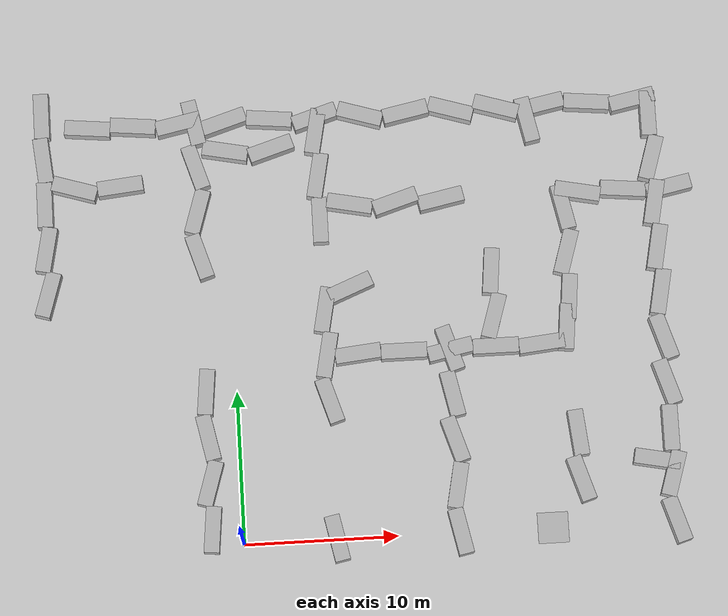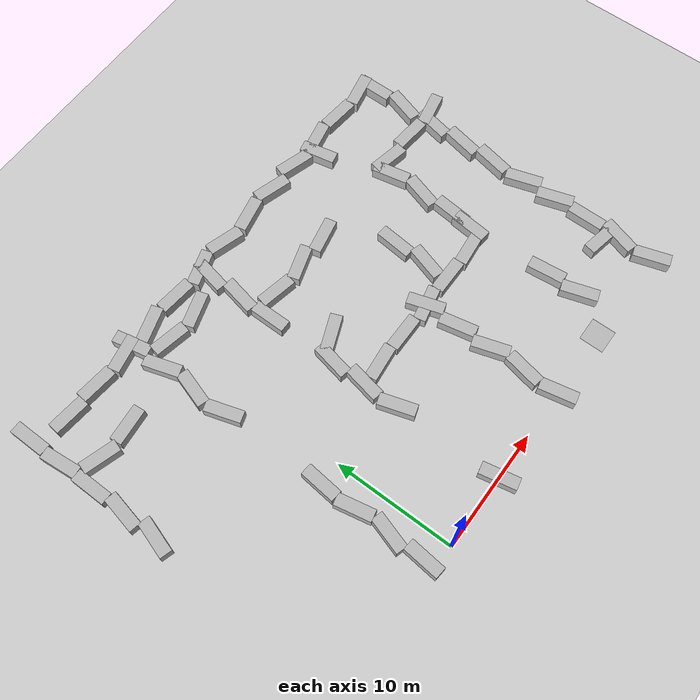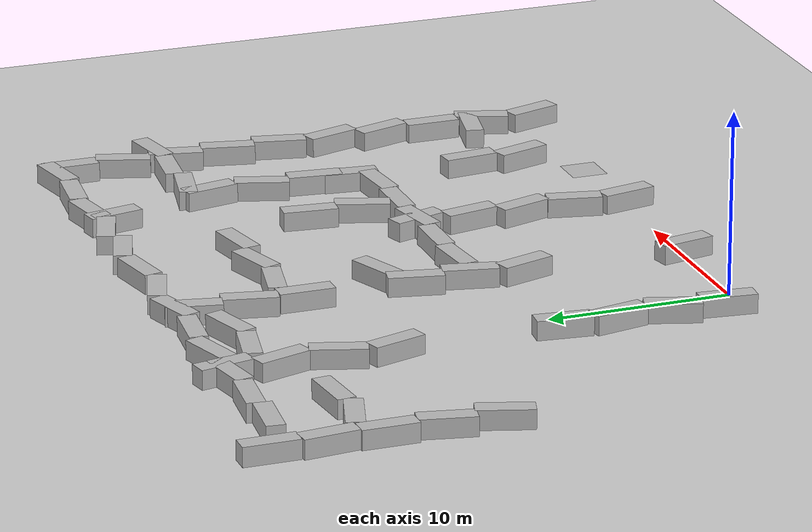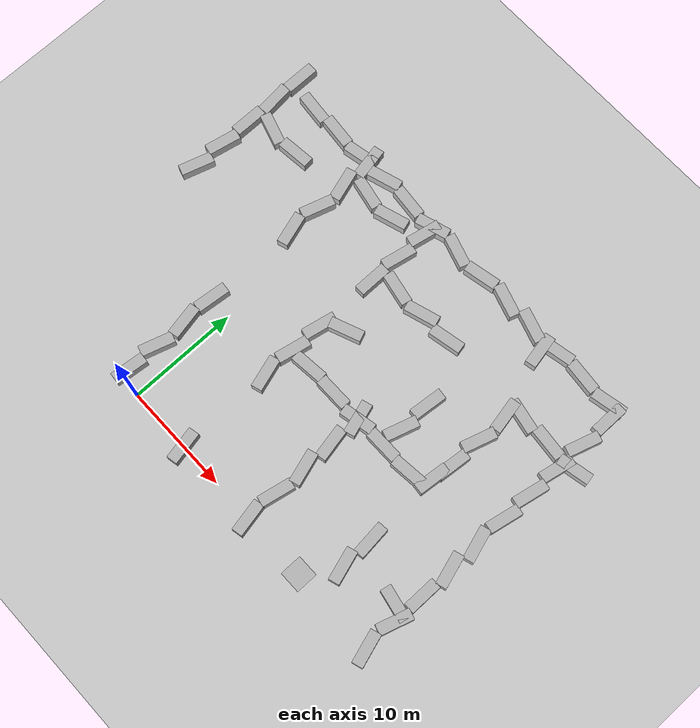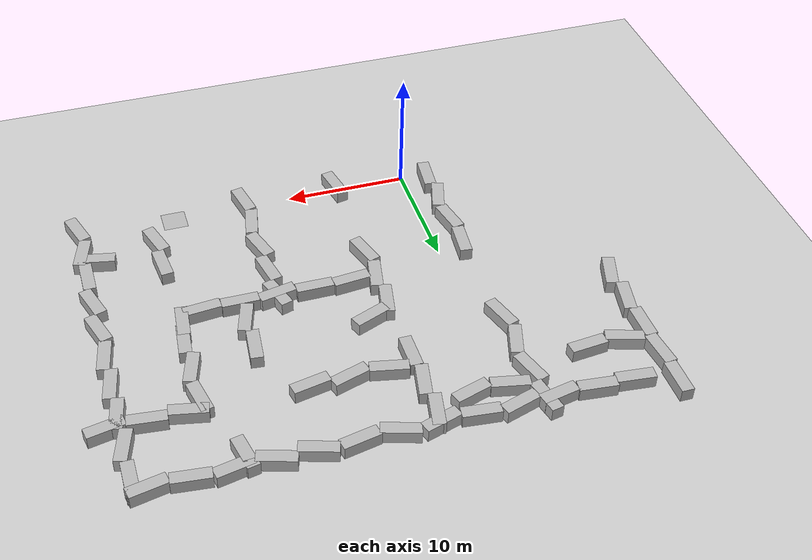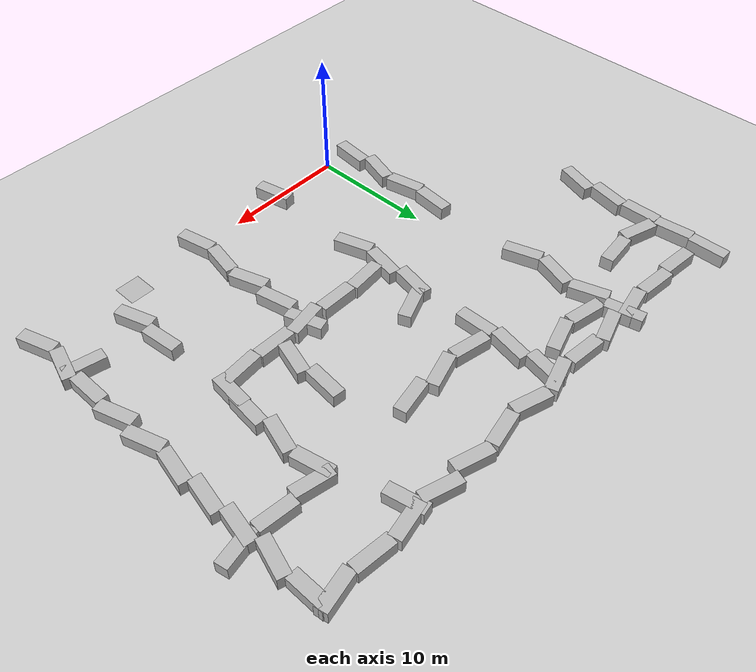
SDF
<sdf version="1.6">
 <world name="default">
  <model name="ground_plane">
   <static>1</static>
   <link name="link">
    <collision name="collision">
     <geometry><plane><normal>0 0 1</normal><size>100 100</size></plane></geometry>
     <surface>
      <contact><collide_bitmask>65535</collide_bitmask></contact>
      <friction><ode><mu>100</mu><mu2>50</mu2></ode></friction>
     </surface>
    </collision>
    <visual name="visual">
     <cast_shadows>0</cast_shadows>
     <geometry><plane><normal>0 0 1</normal><size>100 100</size></plane></geometry>
     <material>
      <script><uri>file://media/materials/scripts/gazebo.material</uri><name>Gazebo/Grey</name></script>
     </material>
    </visual>
   </link>
  </model>
  <model name="goal">
   <static>1</static>
   <link name="link">
    <visual name="visual">
     <geometry><mesh><uri>model://checkerboard_plane/meshes/checkerboard_plane.dae</uri></mesh></geometry>
    </visual>
   </link>
   <pose>20 0 0.01 0 -0 0</pose>
  </model>
  <model name="wall25">
   <static>1</static>
   <link name="chassis">
    <pose>0 0 1.5 0 -0 0</pose>
    <collision name="collision"><geometry><box><size>3 1 3</size></box></geometry></collision>
    <visual name="visual">
     <geometry><mesh><uri>model://brick_box_3x1x3/meshes/simple_box.dae</uri><scale>3 1 3</scale></mesh></geometry>
     <material>
      <script>
       <uri>model://brick_box_3x1x3/materials/scripts</uri>
       <uri>model://brick_box_3x1x3/materials/textures</uri>
       <name>BrickBox/Diffuse</name>
      </script>
     </material>
    </visual>
   </link>
   <pose>-9 28 -2 0 0 -0.1</pose>
  </model>
  <model name="wall29">
   <static>1</static>
   <link name="chassis">
    <pose>0 0 1.5 0 -0 0</pose>
    <collision name="collision"><geometry><box><size>3 1 3</size></box></geometry></collision>
    <visual name="visual">
     <geometry><mesh><uri>model://brick_box_3x1x3/meshes/simple_box.dae</uri><scale>3 1 3</scale></mesh></geometry>
     <material>
      <script>
       <uri>model://brick_box_3x1x3/materials/scripts</uri>
       <uri>model://brick_box_3x1x3/materials/textures</uri>
       <name>BrickBox/Diffuse</name>
      </script>
     </material>
    </visual>
   </link>
   <pose>-6 28 -2 0 0 -0.1</pose>
  </model>
  <model name="wall33">
   <static>1</static>
   <link name="chassis">
    <pose>0 0 1.5 0 -0 0</pose>
    <collision name="collision"><geometry><box><size>3 1 3</size></box></geometry></collision>
    <visual name="visual">
     <geometry><mesh><uri>model://brick_box_3x1x3/meshes/simple_box.dae</uri><scale>3 1 3</scale></mesh></geometry>
     <material>
      <script>
       <uri>model://brick_box_3x1x3/materials/scripts</uri>
       <uri>model://brick_box_3x1x3/materials/textures</uri>
       <name>BrickBox/Diffuse</name>
      </script>
     </material>
    </visual>
   </link>
   <pose>-3 28 -2 0 -0 0.2</pose>
  </model>
  <model name="wall37">
   <static>1</static>
   <link name="chassis">
    <pose>0 0 1.5 0 -0 0</pose>
    <collision name="collision"><geometry><box><size>3 1 3</size></box></geometry></collision>
    <visual name="visual">
     <geometry><mesh><uri>model://brick_box_3x1x3/meshes/simple_box.dae</uri><scale>3 1 3</scale></mesh></geometry>
     <material>
      <script>
       <uri>model://brick_box_3x1x3/materials/scripts</uri>
       <uri>model://brick_box_3x1x3/materials/textures</uri>
       <name>BrickBox/Diffuse</name>
      </script>
     </material>
    </visual>
   </link>
   <pose>0 28 -2 0 -0 0.3</pose>
  </model>
  <model name="wall39">
   <static>1</static>
   <link name="chassis">
    <pose>0 0 1.5 0 -0 0</pose>
    <collision name="collision"><geometry><box><size>3 1 3</size></box></geometry></collision>
    <visual name="visual">
     <geometry><mesh><uri>model://brick_box_3x1x3/meshes/simple_box.dae</uri><scale>3 1 3</scale></mesh></geometry>
     <material>
      <script>
       <uri>model://brick_box_3x1x3/materials/scripts</uri>
       <uri>model://brick_box_3x1x3/materials/textures</uri>
       <name>BrickBox/Diffuse</name>
      </script>
     </material>
    </visual>
   </link>
   <pose>28 0 -2 0 -0 1.8708</pose>
  </model>
  <model name="wall41">
   <static>1</static>
   <link name="chassis">
    <pose>0 0 1.5 0 -0 0</pose>
    <collision name="collision"><geometry><box><size>3 1 3</size></box></geometry></collision>
    <visual name="visual">
     <geometry><mesh><uri>model://brick_box_3x1x3/meshes/simple_box.dae</uri><scale>3 1 3</scale></mesh></geometry>
     <material>
      <script>
       <uri>model://brick_box_3x1x3/materials/scripts</uri>
       <uri>model://brick_box_3x1x3/materials/textures</uri>
       <name>BrickBox/Diffuse</name>
      </script>
     </material>
    </visual>
   </link>
   <pose>3 28 -2 0 0 -0.1</pose>
  </model>
  <model name="wall43">
   <static>1</static>
   <link name="chassis">
    <pose>0 0 1.5 0 -0 0</pose>
    <collision name="collision"><geometry><box><size>3 1 3</size></box></geometry></collision>
    <visual name="visual">
     <geometry><mesh><uri>model://brick_box_3x1x3/meshes/simple_box.dae</uri><scale>3 1 3</scale></mesh></geometry>
     <material>
      <script>
       <uri>model://brick_box_3x1x3/materials/scripts</uri>
       <uri>model://brick_box_3x1x3/materials/textures</uri>
       <name>BrickBox/Diffuse</name>
      </script>
     </material>
    </visual>
   </link>
   <pose>28 3 -2 0 -0 1.2708</pose>
  </model>
  <model name="wall45">
   <static>1</static>
   <link name="chassis">
    <pose>0 0 1.5 0 -0 0</pose>
    <collision name="collision"><geometry><box><size>3 1 3</size></box></geometry></collision>
    <visual name="visual">
     <geometry><mesh><uri>model://brick_box_3x1x3/meshes/simple_box.dae</uri><scale>3 1 3</scale></mesh></geometry>
     <material>
      <script>
       <uri>model://brick_box_3x1x3/materials/scripts</uri>
       <uri>model://brick_box_3x1x3/materials/textures</uri>
       <name>BrickBox/Diffuse</name>
      </script>
     </material>
    </visual>
   </link>
   <pose>6 28 -2 0 -0 0.3</pose>
  </model>
  <model name="wall47">
   <static>1</static>
   <link name="chassis">
    <pose>0 0 1.5 0 -0 0</pose>
    <collision name="collision"><geometry><box><size>3 1 3</size></box></geometry></collision>
    <visual name="visual">
     <geometry><mesh><uri>model://brick_box_3x1x3/meshes/simple_box.dae</uri><scale>3 1 3</scale></mesh></geometry>
     <material>
      <script>
       <uri>model://brick_box_3x1x3/materials/scripts</uri>
       <uri>model://brick_box_3x1x3/materials/textures</uri>
       <name>BrickBox/Diffuse</name>
      </script>
     </material>
    </visual>
   </link>
   <pose>28 6 -2 0 -0 1.5708</pose>
  </model>
  <model name="wall49">
   <static>1</static>
   <link name="chassis">
    <pose>0 0 1.5 0 -0 0</pose>
    <collision name="collision"><geometry><box><size>3 1 3</size></box></geometry></collision>
    <visual name="visual">
     <geometry><mesh><uri>model://brick_box_3x1x3/meshes/simple_box.dae</uri><scale>3 1 3</scale></mesh></geometry>
     <material>
      <script>
       <uri>model://brick_box_3x1x3/materials/scripts</uri>
       <uri>model://brick_box_3x1x3/materials/textures</uri>
       <name>BrickBox/Diffuse</name>
      </script>
     </material>
    </visual>
   </link>
   <pose>9 28 -2 0 0 -0.3</pose>
  </model>
  <model name="wall51">
   <static>1</static>
   <link name="chassis">
    <pose>0 0 1.5 0 -0 0</pose>
    <collision name="collision"><geometry><box><size>3 1 3</size></box></geometry></collision>
    <visual name="visual">
     <geometry><mesh><uri>model://brick_box_3x1x3/meshes/simple_box.dae</uri><scale>3 1 3</scale></mesh></geometry>
     <material>
      <script>
       <uri>model://brick_box_3x1x3/materials/scripts</uri>
       <uri>model://brick_box_3x1x3/materials/textures</uri>
       <name>BrickBox/Diffuse</name>
      </script>
     </material>
    </visual>
   </link>
   <pose>28 9 -2 0 -0 1.8708</pose>
  </model>
  <model name="wall53">
   <static>1</static>
   <link name="chassis">
    <pose>0 0 1.5 0 -0 0</pose>
    <collision name="collision"><geometry><box><size>3 1 3</size></box></geometry></collision>
    <visual name="visual">
     <geometry><mesh><uri>model://brick_box_3x1x3/meshes/simple_box.dae</uri><scale>3 1 3</scale></mesh></geometry>
     <material>
      <script>
       <uri>model://brick_box_3x1x3/materials/scripts</uri>
       <uri>model://brick_box_3x1x3/materials/textures</uri>
       <name>BrickBox/Diffuse</name>
      </script>
     </material>
    </visual>
   </link>
   <pose>12 28 -2 0 -0 0.2</pose>
  </model>
  <model name="wall55">
   <static>1</static>
   <link name="chassis">
    <pose>0 0 1.5 0 -0 0</pose>
    <collision name="collision"><geometry><box><size>3 1 3</size></box></geometry></collision>
    <visual name="visual">
     <geometry><mesh><uri>model://brick_box_3x1x3/meshes/simple_box.dae</uri><scale>3 1 3</scale></mesh></geometry>
     <material>
      <script>
       <uri>model://brick_box_3x1x3/materials/scripts</uri>
       <uri>model://brick_box_3x1x3/materials/textures</uri>
       <name>BrickBox/Diffuse</name>
      </script>
     </material>
    </visual>
   </link>
   <pose>28 12 -2 0 -0 1.8708</pose>
  </model>
  <model name="wall57">
   <static>1</static>
   <link name="chassis">
    <pose>0 0 1.5 0 -0 0</pose>
    <collision name="collision"><geometry><box><size>3 1 3</size></box></geometry></collision>
    <visual name="visual">
     <geometry><mesh><uri>model://brick_box_3x1x3/meshes/simple_box.dae</uri><scale>3 1 3</scale></mesh></geometry>
     <material>
      <script>
       <uri>model://brick_box_3x1x3/materials/scripts</uri>
       <uri>model://brick_box_3x1x3/materials/textures</uri>
       <name>BrickBox/Diffuse</name>
      </script>
     </material>
    </visual>
   </link>
   <pose>15 28 -2 0 0 -0.3</pose>
  </model>
  <model name="wall59">
   <static>1</static>
   <link name="chassis">
    <pose>0 0 1.5 0 -0 0</pose>
    <collision name="collision"><geometry><box><size>3 1 3</size></box></geometry></collision>
    <visual name="visual">
     <geometry><mesh><uri>model://brick_box_3x1x3/meshes/simple_box.dae</uri><scale>3 1 3</scale></mesh></geometry>
     <material>
      <script>
       <uri>model://brick_box_3x1x3/materials/scripts</uri>
       <uri>model://brick_box_3x1x3/materials/textures</uri>
       <name>BrickBox/Diffuse</name>
      </script>
     </material>
    </visual>
   </link>
   <pose>28 15 -2 0 -0 1.3708</pose>
  </model>
  <model name="wall61">
   <static>1</static>
   <link name="chassis">
    <pose>0 0 1.5 0 -0 0</pose>
    <collision name="collision"><geometry><box><size>3 1 3</size></box></geometry></collision>
    <visual name="visual">
     <geometry><mesh><uri>model://brick_box_3x1x3/meshes/simple_box.dae</uri><scale>3 1 3</scale></mesh></geometry>
     <material>
      <script>
       <uri>model://brick_box_3x1x3/materials/scripts</uri>
       <uri>model://brick_box_3x1x3/materials/textures</uri>
       <name>BrickBox/Diffuse</name>
      </script>
     </material>
    </visual>
   </link>
   <pose>18 28 -2 0 0 -0.3</pose>
  </model>
  <model name="wall63">
   <static>1</static>
   <link name="chassis">
    <pose>0 0 1.5 0 -0 0</pose>
    <collision name="collision"><geometry><box><size>3 1 3</size></box></geometry></collision>
    <visual name="visual">
     <geometry><mesh><uri>model://brick_box_3x1x3/meshes/simple_box.dae</uri><scale>3 1 3</scale></mesh></geometry>
     <material>
      <script>
       <uri>model://brick_box_3x1x3/materials/scripts</uri>
       <uri>model://brick_box_3x1x3/materials/textures</uri>
       <name>BrickBox/Diffuse</name>
      </script>
     </material>
    </visual>
   </link>
   <pose>28 18 -2 0 -0 1.3708</pose>
  </model>
  <model name="wall65">
   <static>1</static>
   <link name="chassis">
    <pose>0 0 1.5 0 -0 0</pose>
    <collision name="collision"><geometry><box><size>3 1 3</size></box></geometry></collision>
    <visual name="visual">
     <geometry><mesh><uri>model://brick_box_3x1x3/meshes/simple_box.dae</uri><scale>3 1 3</scale></mesh></geometry>
     <material>
      <script>
       <uri>model://brick_box_3x1x3/materials/scripts</uri>
       <uri>model://brick_box_3x1x3/materials/textures</uri>
       <name>BrickBox/Diffuse</name>
      </script>
     </material>
    </visual>
   </link>
   <pose>21 28 -2 0 -0 0.2</pose>
  </model>
  <model name="wall67">
   <static>1</static>
   <link name="chassis">
    <pose>0 0 1.5 0 -0 0</pose>
    <collision name="collision"><geometry><box><size>3 1 3</size></box></geometry></collision>
    <visual name="visual">
     <geometry><mesh><uri>model://brick_box_3x1x3/meshes/simple_box.dae</uri><scale>3 1 3</scale></mesh></geometry>
     <material>
      <script>
       <uri>model://brick_box_3x1x3/materials/scripts</uri>
       <uri>model://brick_box_3x1x3/materials/textures</uri>
       <name>BrickBox/Diffuse</name>
      </script>
     </material>
    </visual>
   </link>
   <pose>28 21 -2 0 -0 1.3708</pose>
  </model>
  <model name="wall69">
   <static>1</static>
   <link name="chassis">
    <pose>0 0 1.5 0 -0 0</pose>
    <collision name="collision"><geometry><box><size>3 1 3</size></box></geometry></collision>
    <visual name="visual">
     <geometry><mesh><uri>model://brick_box_3x1x3/meshes/simple_box.dae</uri><scale>3 1 3</scale></mesh></geometry>
     <material>
      <script>
       <uri>model://brick_box_3x1x3/materials/scripts</uri>
       <uri>model://brick_box_3x1x3/materials/textures</uri>
       <name>BrickBox/Diffuse</name>
      </script>
     </material>
    </visual>
   </link>
   <pose>24 28 -2 0 0 -0.1</pose>
  </model>
  <model name="wall71">
   <static>1</static>
   <link name="chassis">
    <pose>0 0 1.5 0 -0 0</pose>
    <collision name="collision"><geometry><box><size>3 1 3</size></box></geometry></collision>
    <visual name="visual">
     <geometry><mesh><uri>model://brick_box_3x1x3/meshes/simple_box.dae</uri><scale>3 1 3</scale></mesh></geometry>
     <material>
      <script>
       <uri>model://brick_box_3x1x3/materials/scripts</uri>
       <uri>model://brick_box_3x1x3/materials/textures</uri>
       <name>BrickBox/Diffuse</name>
      </script>
     </material>
    </visual>
   </link>
   <pose>28 24 -2 0 -0 1.2708</pose>
  </model>
  <model name="wall73">
   <static>1</static>
   <link name="chassis">
    <pose>0 0 1.5 0 -0 0</pose>
    <collision name="collision"><geometry><box><size>3 1 3</size></box></geometry></collision>
    <visual name="visual">
     <geometry><mesh><uri>model://brick_box_3x1x3/meshes/simple_box.dae</uri><scale>3 1 3</scale></mesh></geometry>
     <material>
      <script>
       <uri>model://brick_box_3x1x3/materials/scripts</uri>
       <uri>model://brick_box_3x1x3/materials/textures</uri>
       <name>BrickBox/Diffuse</name>
      </script>
     </material>
    </visual>
   </link>
   <pose>27 28 -2 0 -0 0.2</pose>
  </model>
  <model name="wall75">
   <static>1</static>
   <link name="chassis">
    <pose>0 0 1.5 0 -0 0</pose>
    <collision name="collision"><geometry><box><size>3 1 3</size></box></geometry></collision>
    <visual name="visual">
     <geometry><mesh><uri>model://brick_box_3x1x3/meshes/simple_box.dae</uri><scale>3 1 3</scale></mesh></geometry>
     <material>
      <script>
       <uri>model://brick_box_3x1x3/materials/scripts</uri>
       <uri>model://brick_box_3x1x3/materials/textures</uri>
       <name>BrickBox/Diffuse</name>
      </script>
     </material>
    </visual>
   </link>
   <pose>28 27 -2 0 -0 1.5708</pose>
  </model>
  <model name="wall85">
   <static>1</static>
   <link name="chassis">
    <pose>0 0 1.5 0 -0 0</pose>
    <collision name="collision"><geometry><box><size>3 1 3</size></box></geometry></collision>
    <visual name="visual">
     <geometry><mesh><uri>model://brick_box_3x1x3/meshes/simple_box.dae</uri><scale>3 1 3</scale></mesh></geometry>
     <material>
      <script>
       <uri>model://brick_box_3x1x3/materials/scripts</uri>
       <uri>model://brick_box_3x1x3/materials/textures</uri>
       <name>BrickBox/Diffuse</name>
      </script>
     </material>
    </visual>
   </link>
   <pose>6 0 -2 0 -0 1.7708</pose>
  </model>
  <model name="wall86">
   <static>1</static>
   <link name="chassis">
    <pose>0 0 1.5 0 -0 0</pose>
    <collision name="collision"><geometry><box><size>3 1 3</size></box></geometry></collision>
    <visual name="visual">
     <geometry><mesh><uri>model://brick_box_3x1x3/meshes/simple_box.dae</uri><scale>3 1 3</scale></mesh></geometry>
     <material>
      <script>
       <uri>model://brick_box_3x1x3/materials/scripts</uri>
       <uri>model://brick_box_3x1x3/materials/textures</uri>
       <name>BrickBox/Diffuse</name>
      </script>
     </material>
    </visual>
   </link>
   <pose>6 9 -2 0 -0 1.8708</pose>
  </model>
  <model name="wall87">
   <static>1</static>
   <link name="chassis">
    <pose>0 0 1.5 0 -0 0</pose>
    <collision name="collision"><geometry><box><size>3 1 3</size></box></geometry></collision>
    <visual name="visual">
     <geometry><mesh><uri>model://brick_box_3x1x3/meshes/simple_box.dae</uri><scale>3 1 3</scale></mesh></geometry>
     <material>
      <script>
       <uri>model://brick_box_3x1x3/materials/scripts</uri>
       <uri>model://brick_box_3x1x3/materials/textures</uri>
       <name>BrickBox/Diffuse</name>
      </script>
     </material>
    </visual>
   </link>
   <pose>6 12 -2 0 -0 1.3708</pose>
  </model>
  <model name="wall88">
   <static>1</static>
   <link name="chassis">
    <pose>0 0 1.5 0 -0 0</pose>
    <collision name="collision"><geometry><box><size>3 1 3</size></box></geometry></collision>
    <visual name="visual">
     <geometry><mesh><uri>model://brick_box_3x1x3/meshes/simple_box.dae</uri><scale>3 1 3</scale></mesh></geometry>
     <material>
      <script>
       <uri>model://brick_box_3x1x3/materials/scripts</uri>
       <uri>model://brick_box_3x1x3/materials/textures</uri>
       <name>BrickBox/Diffuse</name>
      </script>
     </material>
    </visual>
   </link>
   <pose>6 15 -2 0 -0 1.3708</pose>
  </model>
  <model name="wall90">
   <static>1</static>
   <link name="chassis">
    <pose>0 0 1.5 0 -0 0</pose>
    <collision name="collision"><geometry><box><size>3 1 3</size></box></geometry></collision>
    <visual name="visual">
     <geometry><mesh><uri>model://brick_box_3x1x3/meshes/simple_box.dae</uri><scale>3 1 3</scale></mesh></geometry>
     <material>
      <script>
       <uri>model://brick_box_3x1x3/materials/scripts</uri>
       <uri>model://brick_box_3x1x3/materials/textures</uri>
       <name>BrickBox/Diffuse</name>
      </script>
     </material>
    </visual>
   </link>
   <pose>6 21 -2 0 -0 1.5708</pose>
  </model>
  <model name="wall91">
   <static>1</static>
   <link name="chassis">
    <pose>0 0 1.5 0 -0 0</pose>
    <collision name="collision"><geometry><box><size>3 1 3</size></box></geometry></collision>
    <visual name="visual">
     <geometry><mesh><uri>model://brick_box_3x1x3/meshes/simple_box.dae</uri><scale>3 1 3</scale></mesh></geometry>
     <material>
      <script>
       <uri>model://brick_box_3x1x3/materials/scripts</uri>
       <uri>model://brick_box_3x1x3/materials/textures</uri>
       <name>BrickBox/Diffuse</name>
      </script>
     </material>
    </visual>
   </link>
   <pose>6 24 -2 0 -0 1.3708</pose>
  </model>
  <model name="wall92">
   <static>1</static>
   <link name="chassis">
    <pose>0 0 1.5 0 -0 0</pose>
    <collision name="collision"><geometry><box><size>3 1 3</size></box></geometry></collision>
    <visual name="visual">
     <geometry><mesh><uri>model://brick_box_3x1x3/meshes/simple_box.dae</uri><scale>3 1 3</scale></mesh></geometry>
     <material>
      <script>
       <uri>model://brick_box_3x1x3/materials/scripts</uri>
       <uri>model://brick_box_3x1x3/materials/textures</uri>
       <name>BrickBox/Diffuse</name>
      </script>
     </material>
    </visual>
   </link>
   <pose>6 27 -2 0 -0 1.3708</pose>
  </model>
  <model name="wall102">
   <static>1</static>
   <link name="chassis">
    <pose>0 0 1.5 0 -0 0</pose>
    <collision name="collision"><geometry><box><size>3 1 3</size></box></geometry></collision>
    <visual name="visual">
     <geometry><mesh><uri>model://brick_box_3x1x3/meshes/simple_box.dae</uri><scale>3 1 3</scale></mesh></geometry>
     <material>
      <script>
       <uri>model://brick_box_3x1x3/materials/scripts</uri>
       <uri>model://brick_box_3x1x3/materials/textures</uri>
       <name>BrickBox/Diffuse</name>
      </script>
     </material>
    </visual>
   </link>
   <pose>14.027 11.9318 -2 0 -0 0.2</pose>
  </model>
  <model name="wall116">
   <static>1</static>
   <link name="chassis">
    <pose>0 0 1.5 0 -0 0</pose>
    <collision name="collision"><geometry><box><size>3 1 3</size></box></geometry></collision>
    <visual name="visual">
     <geometry><mesh><uri>model://brick_box_3x1x3/meshes/simple_box.dae</uri><scale>3 1 3</scale></mesh></geometry>
     <material>
      <script>
       <uri>model://brick_box_3x1x3/materials/scripts</uri>
       <uri>model://brick_box_3x1x3/materials/textures</uri>
       <name>BrickBox/Diffuse</name>
      </script>
     </material>
    </visual>
   </link>
   <pose>-12 17 -2 0 -0 1.2708</pose>
  </model>
  <model name="wall117">
   <static>1</static>
   <link name="chassis">
    <pose>0 0 1.5 0 -0 0</pose>
    <collision name="collision"><geometry><box><size>3 1 3</size></box></geometry></collision>
    <visual name="visual">
     <geometry><mesh><uri>model://brick_box_3x1x3/meshes/simple_box.dae</uri><scale>3 1 3</scale></mesh></geometry>
     <material>
      <script>
       <uri>model://brick_box_3x1x3/materials/scripts</uri>
       <uri>model://brick_box_3x1x3/materials/textures</uri>
       <name>BrickBox/Diffuse</name>
      </script>
     </material>
    </visual>
   </link>
   <pose>-12 20 -2 0 -0 1.3708</pose>
  </model>
  <model name="wall118">
   <static>1</static>
   <link name="chassis">
    <pose>0 0 1.5 0 -0 0</pose>
    <collision name="collision"><geometry><box><size>3 1 3</size></box></geometry></collision>
    <visual name="visual">
     <geometry><mesh><uri>model://brick_box_3x1x3/meshes/simple_box.dae</uri><scale>3 1 3</scale></mesh></geometry>
     <material>
      <script>
       <uri>model://brick_box_3x1x3/materials/scripts</uri>
       <uri>model://brick_box_3x1x3/materials/textures</uri>
       <name>BrickBox/Diffuse</name>
      </script>
     </material>
    </visual>
   </link>
   <pose>-12 23 -2 0 -0 1.5708</pose>
  </model>
  <model name="wall119">
   <static>1</static>
   <link name="chassis">
    <pose>0 0 1.5 0 -0 0</pose>
    <collision name="collision"><geometry><box><size>3 1 3</size></box></geometry></collision>
    <visual name="visual">
     <geometry><mesh><uri>model://brick_box_3x1x3/meshes/simple_box.dae</uri><scale>3 1 3</scale></mesh></geometry>
     <material>
      <script>
       <uri>model://brick_box_3x1x3/materials/scripts</uri>
       <uri>model://brick_box_3x1x3/materials/textures</uri>
       <name>BrickBox/Diffuse</name>
      </script>
     </material>
    </visual>
   </link>
   <pose>-12 26 -2 0 -0 1.6708</pose>
  </model>
  <model name="wall120">
   <static>1</static>
   <link name="chassis">
    <pose>0 0 1.5 0 -0 0</pose>
    <collision name="collision"><geometry><box><size>3 1 3</size></box></geometry></collision>
    <visual name="visual">
     <geometry><mesh><uri>model://brick_box_3x1x3/meshes/simple_box.dae</uri><scale>3 1 3</scale></mesh></geometry>
     <material>
      <script>
       <uri>model://brick_box_3x1x3/materials/scripts</uri>
       <uri>model://brick_box_3x1x3/materials/textures</uri>
       <name>BrickBox/Diffuse</name>
      </script>
     </material>
    </visual>
   </link>
   <pose>-12 29 -2 0 -0 1.5708</pose>
  </model>
  <model name="wall153">
   <static>1</static>
   <link name="chassis">
    <pose>0 0 1.5 0 -0 0</pose>
    <collision name="collision"><geometry><box><size>3 1 3</size></box></geometry></collision>
    <visual name="visual">
     <geometry><mesh><uri>model://brick_box_3x1x3/meshes/simple_box.dae</uri><scale>3 1 3</scale></mesh></geometry>
     <material>
      <script>
       <uri>model://brick_box_3x1x3/materials/scripts</uri>
       <uri>model://brick_box_3x1x3/materials/textures</uri>
       <name>BrickBox/Diffuse</name>
      </script>
     </material>
    </visual>
   </link>
   <pose>-2 1 -2 0 -0 1.4708</pose>
  </model>
  <model name="wall154">
   <static>1</static>
   <link name="chassis">
    <pose>0 0 1.5 0 -0 0</pose>
    <collision name="collision"><geometry><box><size>3 1 3</size></box></geometry></collision>
    <visual name="visual">
     <geometry><mesh><uri>model://brick_box_3x1x3/meshes/simple_box.dae</uri><scale>3 1 3</scale></mesh></geometry>
     <material>
      <script>
       <uri>model://brick_box_3x1x3/materials/scripts</uri>
       <uri>model://brick_box_3x1x3/materials/textures</uri>
       <name>BrickBox/Diffuse</name>
      </script>
     </material>
    </visual>
   </link>
   <pose>-2 4 -2 0 -0 1.2708</pose>
  </model>
  <model name="wall155">
   <static>1</static>
   <link name="chassis">
    <pose>0 0 1.5 0 -0 0</pose>
    <collision name="collision"><geometry><box><size>3 1 3</size></box></geometry></collision>
    <visual name="visual">
     <geometry><mesh><uri>model://brick_box_3x1x3/meshes/simple_box.dae</uri><scale>3 1 3</scale></mesh></geometry>
     <material>
      <script>
       <uri>model://brick_box_3x1x3/materials/scripts</uri>
       <uri>model://brick_box_3x1x3/materials/textures</uri>
       <name>BrickBox/Diffuse</name>
      </script>
     </material>
    </visual>
   </link>
   <pose>-2 7 -2 0 -0 1.7708</pose>
  </model>
  <model name="wall156">
   <static>1</static>
   <link name="chassis">
    <pose>0 0 1.5 0 -0 0</pose>
    <collision name="collision"><geometry><box><size>3 1 3</size></box></geometry></collision>
    <visual name="visual">
     <geometry><mesh><uri>model://brick_box_3x1x3/meshes/simple_box.dae</uri><scale>3 1 3</scale></mesh></geometry>
     <material>
      <script>
       <uri>model://brick_box_3x1x3/materials/scripts</uri>
       <uri>model://brick_box_3x1x3/materials/textures</uri>
       <name>BrickBox/Diffuse</name>
      </script>
     </material>
    </visual>
   </link>
   <pose>-2 10 -2 0 -0 1.4708</pose>
  </model>
  <model name="wall157">
   <static>1</static>
   <link name="chassis">
    <pose>0 0 1.5 0 -0 0</pose>
    <collision name="collision"><geometry><box><size>3 1 3</size></box></geometry></collision>
    <visual name="visual">
     <geometry><mesh><uri>model://brick_box_3x1x3/meshes/simple_box.dae</uri><scale>3 1 3</scale></mesh></geometry>
     <material>
      <script>
       <uri>model://brick_box_3x1x3/materials/scripts</uri>
       <uri>model://brick_box_3x1x3/materials/textures</uri>
       <name>BrickBox/Diffuse</name>
      </script>
     </material>
    </visual>
   </link>
   <pose>-2 19 -2 0 -0 1.8708</pose>
  </model>
  <model name="wall158">
   <static>1</static>
   <link name="chassis">
    <pose>0 0 1.5 0 -0 0</pose>
    <collision name="collision"><geometry><box><size>3 1 3</size></box></geometry></collision>
    <visual name="visual">
     <geometry><mesh><uri>model://brick_box_3x1x3/meshes/simple_box.dae</uri><scale>3 1 3</scale></mesh></geometry>
     <material>
      <script>
       <uri>model://brick_box_3x1x3/materials/scripts</uri>
       <uri>model://brick_box_3x1x3/materials/textures</uri>
       <name>BrickBox/Diffuse</name>
      </script>
     </material>
    </visual>
   </link>
   <pose>-2 22 -2 0 -0 1.2708</pose>
  </model>
  <model name="wall159">
   <static>1</static>
   <link name="chassis">
    <pose>0 0 1.5 0 -0 0</pose>
    <collision name="collision"><geometry><box><size>3 1 3</size></box></geometry></collision>
    <visual name="visual">
     <geometry><mesh><uri>model://brick_box_3x1x3/meshes/simple_box.dae</uri><scale>3 1 3</scale></mesh></geometry>
     <material>
      <script>
       <uri>model://brick_box_3x1x3/materials/scripts</uri>
       <uri>model://brick_box_3x1x3/materials/textures</uri>
       <name>BrickBox/Diffuse</name>
      </script>
     </material>
    </visual>
   </link>
   <pose>-2 25 -2 0 -0 1.8708</pose>
  </model>
  <model name="wall160">
   <static>1</static>
   <link name="chassis">
    <pose>0 0 1.5 0 -0 0</pose>
    <collision name="collision"><geometry><box><size>3 1 3</size></box></geometry></collision>
    <visual name="visual">
     <geometry><mesh><uri>model://brick_box_3x1x3/meshes/simple_box.dae</uri><scale>3 1 3</scale></mesh></geometry>
     <material>
      <script>
       <uri>model://brick_box_3x1x3/materials/scripts</uri>
       <uri>model://brick_box_3x1x3/materials/textures</uri>
       <name>BrickBox/Diffuse</name>
      </script>
     </material>
    </visual>
   </link>
   <pose>-2 28 -2 0 -0 1.7708</pose>
  </model>
  <model name="wall161">
   <static>1</static>
   <link name="chassis">
    <pose>0 0 1.5 0 -0 0</pose>
    <collision name="collision"><geometry><box><size>3 1 3</size></box></geometry></collision>
    <visual name="visual">
     <geometry><mesh><uri>model://brick_box_3x1x3/meshes/simple_box.dae</uri><scale>3 1 3</scale></mesh></geometry>
     <material>
      <script>
       <uri>model://brick_box_3x1x3/materials/scripts</uri>
       <uri>model://brick_box_3x1x3/materials/textures</uri>
       <name>BrickBox/Diffuse</name>
      </script>
     </material>
    </visual>
   </link>
   <pose>-10 24 -2 0 0 -0.3</pose>
  </model>
  <model name="wall162">
   <static>1</static>
   <link name="chassis">
    <pose>0 0 1.5 0 -0 0</pose>
    <collision name="collision"><geometry><box><size>3 1 3</size></box></geometry></collision>
    <visual name="visual">
     <geometry><mesh><uri>model://brick_box_3x1x3/meshes/simple_box.dae</uri><scale>3 1 3</scale></mesh></geometry>
     <material>
      <script>
       <uri>model://brick_box_3x1x3/materials/scripts</uri>
       <uri>model://brick_box_3x1x3/materials/textures</uri>
       <name>BrickBox/Diffuse</name>
      </script>
     </material>
    </visual>
   </link>
   <pose>-7 24 -2 0 -0 0.1</pose>
  </model>
  <model name="wall163">
   <static>1</static>
   <link name="chassis">
    <pose>0 0 1.5 0 -0 0</pose>
    <collision name="collision"><geometry><box><size>3 1 3</size></box></geometry></collision>
    <visual name="visual">
     <geometry><mesh><uri>model://brick_box_3x1x3/meshes/simple_box.dae</uri><scale>3 1 3</scale></mesh></geometry>
     <material>
      <script>
       <uri>model://brick_box_3x1x3/materials/scripts</uri>
       <uri>model://brick_box_3x1x3/materials/textures</uri>
       <name>BrickBox/Diffuse</name>
      </script>
     </material>
    </visual>
   </link>
   <pose>0 26 -2 0 0 -0.2</pose>
  </model>
  <model name="wall164">
   <static>1</static>
   <link name="chassis">
    <pose>0 0 1.5 0 -0 0</pose>
    <collision name="collision"><geometry><box><size>3 1 3</size></box></geometry></collision>
    <visual name="visual">
     <geometry><mesh><uri>model://brick_box_3x1x3/meshes/simple_box.dae</uri><scale>3 1 3</scale></mesh></geometry>
     <material>
      <script>
       <uri>model://brick_box_3x1x3/materials/scripts</uri>
       <uri>model://brick_box_3x1x3/materials/textures</uri>
       <name>BrickBox/Diffuse</name>
      </script>
     </material>
    </visual>
   </link>
   <pose>3 26 -2 0 -0 0.3</pose>
  </model>
  <model name="wall165">
   <static>1</static>
   <link name="chassis">
    <pose>0 0 1.5 0 -0 0</pose>
    <collision name="collision"><geometry><box><size>3 1 3</size></box></geometry></collision>
    <visual name="visual">
     <geometry><mesh><uri>model://brick_box_3x1x3/meshes/simple_box.dae</uri><scale>3 1 3</scale></mesh></geometry>
     <material>
      <script>
       <uri>model://brick_box_3x1x3/materials/scripts</uri>
       <uri>model://brick_box_3x1x3/materials/textures</uri>
       <name>BrickBox/Diffuse</name>
      </script>
     </material>
    </visual>
   </link>
   <pose>8 22 -2 0 0 -0.2</pose>
  </model>
  <model name="wall166">
   <static>1</static>
   <link name="chassis">
    <pose>0 0 1.5 0 -0 0</pose>
    <collision name="collision"><geometry><box><size>3 1 3</size></box></geometry></collision>
    <visual name="visual">
     <geometry><mesh><uri>model://brick_box_3x1x3/meshes/simple_box.dae</uri><scale>3 1 3</scale></mesh></geometry>
     <material>
      <script>
       <uri>model://brick_box_3x1x3/materials/scripts</uri>
       <uri>model://brick_box_3x1x3/materials/textures</uri>
       <name>BrickBox/Diffuse</name>
      </script>
     </material>
    </visual>
   </link>
   <pose>11 22 -2 0 -0 0.3</pose>
  </model>
  <model name="wall167">
   <static>1</static>
   <link name="chassis">
    <pose>0 0 1.5 0 -0 0</pose>
    <collision name="collision"><geometry><box><size>3 1 3</size></box></geometry></collision>
    <visual name="visual">
     <geometry><mesh><uri>model://brick_box_3x1x3/meshes/simple_box.dae</uri><scale>3 1 3</scale></mesh></geometry>
     <material>
      <script>
       <uri>model://brick_box_3x1x3/materials/scripts</uri>
       <uri>model://brick_box_3x1x3/materials/textures</uri>
       <name>BrickBox/Diffuse</name>
      </script>
     </material>
    </visual>
   </link>
   <pose>14 22 -2 0 -0 0.2</pose>
  </model>
  <model name="wall168">
   <static>1</static>
   <link name="chassis">
    <pose>0 0 1.5 0 -0 0</pose>
    <collision name="collision"><geometry><box><size>3 1 3</size></box></geometry></collision>
    <visual name="visual">
     <geometry><mesh><uri>model://brick_box_3x1x3/meshes/simple_box.dae</uri><scale>3 1 3</scale></mesh></geometry>
     <material>
      <script>
       <uri>model://brick_box_3x1x3/materials/scripts</uri>
       <uri>model://brick_box_3x1x3/materials/textures</uri>
       <name>BrickBox/Diffuse</name>
      </script>
     </material>
    </visual>
   </link>
   <pose>23 22 -2 0 0 -0.2</pose>
  </model>
  <model name="wall169">
   <static>1</static>
   <link name="chassis">
    <pose>0 0 1.5 0 -0 0</pose>
    <collision name="collision"><geometry><box><size>3 1 3</size></box></geometry></collision>
    <visual name="visual">
     <geometry><mesh><uri>model://brick_box_3x1x3/meshes/simple_box.dae</uri><scale>3 1 3</scale></mesh></geometry>
     <material>
      <script>
       <uri>model://brick_box_3x1x3/materials/scripts</uri>
       <uri>model://brick_box_3x1x3/materials/textures</uri>
       <name>BrickBox/Diffuse</name>
      </script>
     </material>
    </visual>
   </link>
   <pose>26 22 -2 0 0 -0.1</pose>
  </model>
  <model name="wall170">
   <static>1</static>
   <link name="chassis">
    <pose>0 0 1.5 0 -0 0</pose>
    <collision name="collision"><geometry><box><size>3 1 3</size></box></geometry></collision>
    <visual name="visual">
     <geometry><mesh><uri>model://brick_box_3x1x3/meshes/simple_box.dae</uri><scale>3 1 3</scale></mesh></geometry>
     <material>
      <script>
       <uri>model://brick_box_3x1x3/materials/scripts</uri>
       <uri>model://brick_box_3x1x3/materials/textures</uri>
       <name>BrickBox/Diffuse</name>
      </script>
     </material>
    </visual>
   </link>
   <pose>29 22 -2 0 -0 0.2</pose>
  </model>
  <model name="wall180">
   <static>1</static>
   <link name="chassis">
    <pose>0 0 1.5 0 -0 0</pose>
    <collision name="collision"><geometry><box><size>3 1 3</size></box></geometry></collision>
    <visual name="visual">
     <geometry><mesh><uri>model://brick_box_3x1x3/meshes/simple_box.dae</uri><scale>3 1 3</scale></mesh></geometry>
     <material>
      <script>
       <uri>model://brick_box_3x1x3/materials/scripts</uri>
       <uri>model://brick_box_3x1x3/materials/textures</uri>
       <name>BrickBox/Diffuse</name>
      </script>
     </material>
    </visual>
   </link>
   <pose>22 3 -2 0 -0 1.8708</pose>
  </model>
  <model name="wall181">
   <static>1</static>
   <link name="chassis">
    <pose>0 0 1.5 0 -0 0</pose>
    <collision name="collision"><geometry><box><size>3 1 3</size></box></geometry></collision>
    <visual name="visual">
     <geometry><mesh><uri>model://brick_box_3x1x3/meshes/simple_box.dae</uri><scale>3 1 3</scale></mesh></geometry>
     <material>
      <script>
       <uri>model://brick_box_3x1x3/materials/scripts</uri>
       <uri>model://brick_box_3x1x3/materials/textures</uri>
       <name>BrickBox/Diffuse</name>
      </script>
     </material>
    </visual>
   </link>
   <pose>22 6 -2 0 -0 1.6708</pose>
  </model>
  <model name="wall182">
   <static>1</static>
   <link name="chassis">
    <pose>0 0 1.5 0 -0 0</pose>
    <collision name="collision"><geometry><box><size>3 1 3</size></box></geometry></collision>
    <visual name="visual">
     <geometry><mesh><uri>model://brick_box_3x1x3/meshes/simple_box.dae</uri><scale>3 1 3</scale></mesh></geometry>
     <material>
      <script>
       <uri>model://brick_box_3x1x3/materials/scripts</uri>
       <uri>model://brick_box_3x1x3/materials/textures</uri>
       <name>BrickBox/Diffuse</name>
      </script>
     </material>
    </visual>
   </link>
   <pose>21.72 13.0261 -2 0 -0 1.4708</pose>
  </model>
  <model name="wall183">
   <static>1</static>
   <link name="chassis">
    <pose>0 0 1.5 0 -0 0</pose>
    <collision name="collision"><geometry><box><size>3 1 3</size></box></geometry></collision>
    <visual name="visual">
     <geometry><mesh><uri>model://brick_box_3x1x3/meshes/simple_box.dae</uri><scale>3 1 3</scale></mesh></geometry>
     <material>
      <script>
       <uri>model://brick_box_3x1x3/materials/scripts</uri>
       <uri>model://brick_box_3x1x3/materials/textures</uri>
       <name>BrickBox/Diffuse</name>
      </script>
     </material>
    </visual>
   </link>
   <pose>22 15 -2 0 -0 1.4708</pose>
  </model>
  <model name="wall184">
   <static>1</static>
   <link name="chassis">
    <pose>0 0 1.5 0 -0 0</pose>
    <collision name="collision"><geometry><box><size>3 1 3</size></box></geometry></collision>
    <visual name="visual">
     <geometry><mesh><uri>model://brick_box_3x1x3/meshes/simple_box.dae</uri><scale>3 1 3</scale></mesh></geometry>
     <material>
      <script>
       <uri>model://brick_box_3x1x3/materials/scripts</uri>
       <uri>model://brick_box_3x1x3/materials/textures</uri>
       <name>BrickBox/Diffuse</name>
      </script>
     </material>
    </visual>
   </link>
   <pose>22 18 -2 0 -0 1.2708</pose>
  </model>
  <model name="wall185">
   <static>1</static>
   <link name="chassis">
    <pose>0 0 1.5 0 -0 0</pose>
    <collision name="collision"><geometry><box><size>3 1 3</size></box></geometry></collision>
    <visual name="visual">
     <geometry><mesh><uri>model://brick_box_3x1x3/meshes/simple_box.dae</uri><scale>3 1 3</scale></mesh></geometry>
     <material>
      <script>
       <uri>model://brick_box_3x1x3/materials/scripts</uri>
       <uri>model://brick_box_3x1x3/materials/textures</uri>
       <name>BrickBox/Diffuse</name>
      </script>
     </material>
    </visual>
   </link>
   <pose>22 21 -2 0 -0 1.7708</pose>
  </model>
  <model name="wall186">
   <static>1</static>
   <link name="chassis">
    <pose>0 0 1.5 0 -0 0</pose>
    <collision name="collision"><geometry><box><size>3 1 3</size></box></geometry></collision>
    <visual name="visual">
     <geometry><mesh><uri>model://brick_box_3x1x3/meshes/simple_box.dae</uri><scale>3 1 3</scale></mesh></geometry>
     <material>
      <script>
       <uri>model://brick_box_3x1x3/materials/scripts</uri>
       <uri>model://brick_box_3x1x3/materials/textures</uri>
       <name>BrickBox/Diffuse</name>
      </script>
     </material>
    </visual>
   </link>
   <pose>8 12 -2 0 -0 0.1</pose>
  </model>
  <model name="wall187">
   <static>1</static>
   <link name="chassis">
    <pose>0 0 1.5 0 -0 0</pose>
    <collision name="collision"><geometry><box><size>3 1 3</size></box></geometry></collision>
    <visual name="visual">
     <geometry><mesh><uri>model://brick_box_3x1x3/meshes/simple_box.dae</uri><scale>3 1 3</scale></mesh></geometry>
     <material>
      <script>
       <uri>model://brick_box_3x1x3/materials/scripts</uri>
       <uri>model://brick_box_3x1x3/materials/textures</uri>
       <name>BrickBox/Diffuse</name>
      </script>
     </material>
    </visual>
   </link>
   <pose>11 12 -2 0 -0 0</pose>
  </model>
  <model name="wall188">
   <static>1</static>
   <link name="chassis">
    <pose>0 0 1.5 0 -0 0</pose>
    <collision name="collision"><geometry><box><size>3 1 3</size></box></geometry></collision>
    <visual name="visual">
     <geometry><mesh><uri>model://brick_box_3x1x3/meshes/simple_box.dae</uri><scale>3 1 3</scale></mesh></geometry>
     <material>
      <script>
       <uri>model://brick_box_3x1x3/materials/scripts</uri>
       <uri>model://brick_box_3x1x3/materials/textures</uri>
       <name>BrickBox/Diffuse</name>
      </script>
     </material>
    </visual>
   </link>
   <pose>17 12 -2 0 -0 0</pose>
  </model>
  <model name="wall189">
   <static>1</static>
   <link name="chassis">
    <pose>0 0 1.5 0 -0 0</pose>
    <collision name="collision"><geometry><box><size>3 1 3</size></box></geometry></collision>
    <visual name="visual">
     <geometry><mesh><uri>model://brick_box_3x1x3/meshes/simple_box.dae</uri><scale>3 1 3</scale></mesh></geometry>
     <material>
      <script>
       <uri>model://brick_box_3x1x3/materials/scripts</uri>
       <uri>model://brick_box_3x1x3/materials/textures</uri>
       <name>BrickBox/Diffuse</name>
      </script>
     </material>
    </visual>
   </link>
   <pose>20 12 -2 0 -0 0.1</pose>
  </model>
  <model name="wall197">
   <static>1</static>
   <link name="chassis">
    <pose>0 0 1.5 0 -0 0</pose>
    <collision name="collision"><geometry><box><size>3 1 3</size></box></geometry></collision>
    <visual name="visual">
     <geometry><mesh><uri>model://brick_box_3x1x3/meshes/simple_box.dae</uri><scale>3 1 3</scale></mesh></geometry>
     <material>
      <script>
       <uri>model://brick_box_3x1x3/materials/scripts</uri>
       <uri>model://brick_box_3x1x3/materials/textures</uri>
       <name>BrickBox/Diffuse</name>
      </script>
     </material>
    </visual>
   </link>
   <pose>14 0 -2 0 -0 1.7708</pose>
  </model>
  <model name="wall198">
   <static>1</static>
   <link name="chassis">
    <pose>0 0 1.5 0 -0 0</pose>
    <collision name="collision"><geometry><box><size>3 1 3</size></box></geometry></collision>
    <visual name="visual">
     <geometry><mesh><uri>model://brick_box_3x1x3/meshes/simple_box.dae</uri><scale>3 1 3</scale></mesh></geometry>
     <material>
      <script>
       <uri>model://brick_box_3x1x3/materials/scripts</uri>
       <uri>model://brick_box_3x1x3/materials/textures</uri>
       <name>BrickBox/Diffuse</name>
      </script>
     </material>
    </visual>
   </link>
   <pose>14 3 -2 0 -0 1.3708</pose>
  </model>
  <model name="wall199">
   <static>1</static>
   <link name="chassis">
    <pose>0 0 1.5 0 -0 0</pose>
    <collision name="collision"><geometry><box><size>3 1 3</size></box></geometry></collision>
    <visual name="visual">
     <geometry><mesh><uri>model://brick_box_3x1x3/meshes/simple_box.dae</uri><scale>3 1 3</scale></mesh></geometry>
     <material>
      <script>
       <uri>model://brick_box_3x1x3/materials/scripts</uri>
       <uri>model://brick_box_3x1x3/materials/textures</uri>
       <name>BrickBox/Diffuse</name>
      </script>
     </material>
    </visual>
   </link>
   <pose>14 6 -2 0 -0 1.8708</pose>
  </model>
  <model name="wall200">
   <static>1</static>
   <link name="chassis">
    <pose>0 0 1.5 0 -0 0</pose>
    <collision name="collision"><geometry><box><size>3 1 3</size></box></geometry></collision>
    <visual name="visual">
     <geometry><mesh><uri>model://brick_box_3x1x3/meshes/simple_box.dae</uri><scale>3 1 3</scale></mesh></geometry>
     <material>
      <script>
       <uri>model://brick_box_3x1x3/materials/scripts</uri>
       <uri>model://brick_box_3x1x3/materials/textures</uri>
       <name>BrickBox/Diffuse</name>
      </script>
     </material>
    </visual>
   </link>
   <pose>14 9 -2 0 -0 1.7708</pose>
  </model>
  <model name="wall201">
   <static>1</static>
   <link name="chassis">
    <pose>0 0 1.5 0 -0 0</pose>
    <collision name="collision"><geometry><box><size>3 1 3</size></box></geometry></collision>
    <visual name="visual">
     <geometry><mesh><uri>model://brick_box_3x1x3/meshes/simple_box.dae</uri><scale>3 1 3</scale></mesh></geometry>
     <material>
      <script>
       <uri>model://brick_box_3x1x3/materials/scripts</uri>
       <uri>model://brick_box_3x1x3/materials/textures</uri>
       <name>BrickBox/Diffuse</name>
      </script>
     </material>
    </visual>
   </link>
   <pose>14 12 -2 0 -0 1.8708</pose>
  </model>
  <model name="wall206">
   <static>1</static>
   <link name="chassis">
    <pose>0 0 1.5 0 -0 0</pose>
    <collision name="collision"><geometry><box><size>3 1 3</size></box></geometry></collision>
    <visual name="visual">
     <geometry><mesh><uri>model://brick_box_3x1x3/meshes/simple_box.dae</uri><scale>3 1 3</scale></mesh></geometry>
     <material>
      <script>
       <uri>model://brick_box_3x1x3/materials/scripts</uri>
       <uri>model://brick_box_3x1x3/materials/textures</uri>
       <name>BrickBox/Diffuse</name>
      </script>
     </material>
    </visual>
   </link>
   <pose>17 14 -2 0 -0 1.2708</pose>
  </model>
  <model name="wall207">
   <static>1</static>
   <link name="chassis">
    <pose>0 0 1.5 0 -0 0</pose>
    <collision name="collision"><geometry><box><size>3 1 3</size></box></geometry></collision>
    <visual name="visual">
     <geometry><mesh><uri>model://brick_box_3x1x3/meshes/simple_box.dae</uri><scale>3 1 3</scale></mesh></geometry>
     <material>
      <script>
       <uri>model://brick_box_3x1x3/materials/scripts</uri>
       <uri>model://brick_box_3x1x3/materials/textures</uri>
       <name>BrickBox/Diffuse</name>
      </script>
     </material>
    </visual>
   </link>
   <pose>17 17 -2 0 -0 1.4708</pose>
  </model>
  <model name="wall209">
   <static>1</static>
   <link name="chassis">
    <pose>0 0 1.5 0 -0 0</pose>
    <collision name="collision"><geometry><box><size>3 1 3</size></box></geometry></collision>
    <visual name="visual">
     <geometry><mesh><uri>model://brick_box_3x1x3/meshes/simple_box.dae</uri><scale>3 1 3</scale></mesh></geometry>
     <material>
      <script>
       <uri>model://brick_box_3x1x3/materials/scripts</uri>
       <uri>model://brick_box_3x1x3/materials/textures</uri>
       <name>BrickBox/Diffuse</name>
      </script>
     </material>
    </visual>
   </link>
   <pose>27 4 -2 0 0 -0.2</pose>
  </model>
  <model name="wall210">
   <static>1</static>
   <link name="chassis">
    <pose>0 0 1.5 0 -0 0</pose>
    <collision name="collision"><geometry><box><size>3 1 3</size></box></geometry></collision>
    <visual name="visual">
     <geometry><mesh><uri>model://brick_box_3x1x3/meshes/simple_box.dae</uri><scale>3 1 3</scale></mesh></geometry>
     <material>
      <script>
       <uri>model://brick_box_3x1x3/materials/scripts</uri>
       <uri>model://brick_box_3x1x3/materials/textures</uri>
       <name>BrickBox/Diffuse</name>
      </script>
     </material>
    </visual>
   </link>
   <pose>7.72755 16.4083 -2 0 -0 0.379987</pose>
  </model>
  <model name="wall211">
   <static>1</static>
   <link name="chassis">
    <pose>0 0 1.5 0 -0 0</pose>
    <collision name="collision"><geometry><box><size>3 1 3</size></box></geometry></collision>
    <visual name="visual">
     <geometry><mesh><uri>model://brick_box_3x1x3/meshes/simple_box.dae</uri><scale>3 1 3</scale></mesh></geometry>
     <material>
      <script>
       <uri>model://brick_box_3x1x3/materials/scripts</uri>
       <uri>model://brick_box_3x1x3/materials/textures</uri>
       <name>BrickBox/Diffuse</name>
      </script>
     </material>
    </visual>
   </link>
   <pose>20 27 -2 0 -0 1.7708</pose>
  </model>
 </world>
</sdf>
